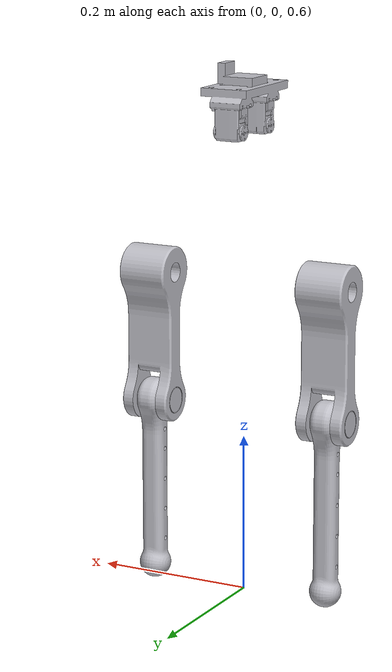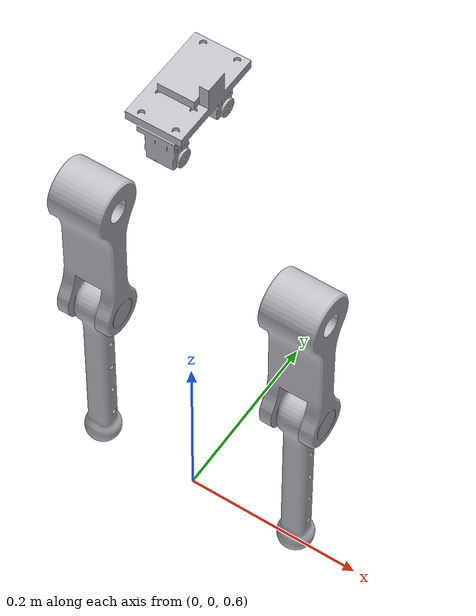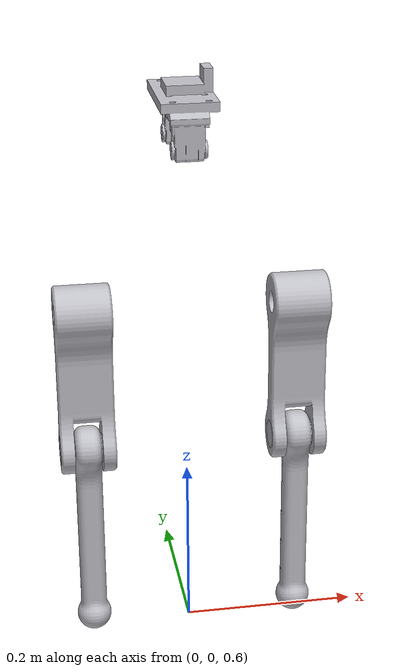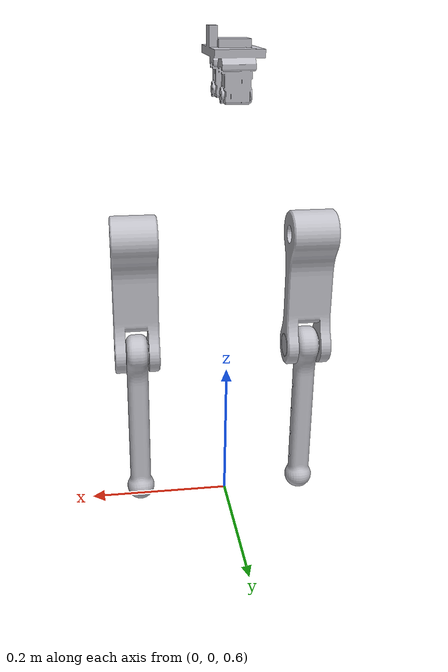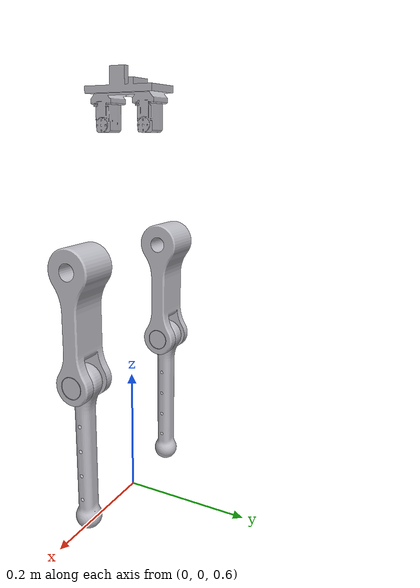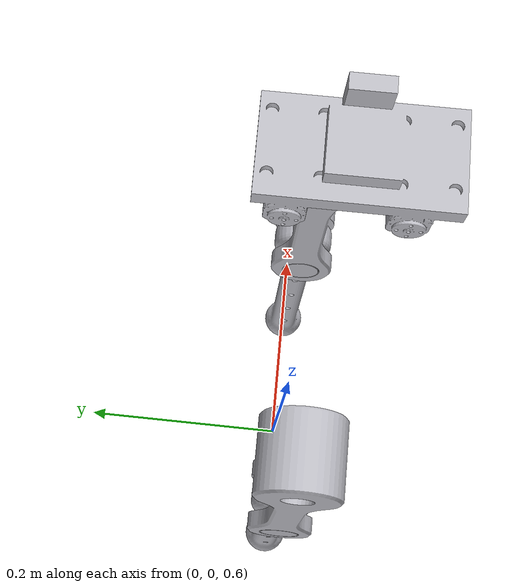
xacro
<?xml version="1.0" ?>
<robot name="biped" xmlns:xacro="http://www.ros.org/wiki/xacro">

    <xacro:include filename="$(find biped_description)/urdf/materials.xacro"/>
    <xacro:include filename="$(find biped_description)/urdf/biped.trans"/>
    <xacro:include filename="$(find biped_description)/urdf/biped.gazebo"/>
    <link name="world"/>
    <link name="base_link">
        <inertial>
            <origin rpy="0 0 0" xyz="0.005621327821758353 0.015721228739773975 -1.0465477887814689e-05"/>
            <mass value="1"/>
            <inertia ixx="0.031387" ixy="0.001206" ixz="-0.0" iyy="0.342069" iyz="-2e-06" izz="0.354706"/>
        </inertial>
        <visual>
            <origin rpy="0 0 0" xyz="0 0 0"/>
            <geometry>
                <mesh filename="package://biped_description/meshes/base_link.stl" scale="0.001 0.001 0.001"/>
            </geometry>
            <material name="silver"/>
        </visual>
        <collision>
            <origin rpy="0 0 0" xyz="0 0 0"/>
            <geometry>
                <mesh filename="package://biped_description/meshes/base_link.stl" scale="0.001 0.001 0.001"/>
            </geometry>
        </collision>
    </link>

    <link name="UP_P_1">
        <inertial>
            <origin rpy="0 0 0" xyz="-2.3592239273284576e-16 5.587886569027426e-14 -0.05397028252227504"/>
            <mass value="0.35203260631893807"/>
            <inertia ixx="0.00134" ixy="0.0" ixz="0.0" iyy="0.001395" iyz="-0.0" izz="0.000192"/>
        </inertial>
        <visual>
            <origin rpy="0 0 0" xyz="0.1141 -0.0 -0.0"/>
            <geometry>
                <mesh filename="package://biped_description/meshes/UP_P_1.stl" scale="0.001 0.001 0.001"/>
            </geometry>
            <material name="silver"/>
        </visual>
        <collision>
            <origin rpy="0 0 0" xyz="0.1141 -0.0 -0.0"/>
            <geometry>
                <mesh filename="package://biped_description/meshes/UP_P_1.stl" scale="0.001 0.001 0.001"/>
            </geometry>
        </collision>
    </link>

    <link name="UP_L_1">
        <inertial>
            <origin rpy="0 0 0" xyz="3.0531133177191805e-16 5.58744247981758e-14 -0.05397045116300229"/>
            <mass value="0.35203260631893807"/>
            <inertia ixx="0.00134" ixy="-0.0" ixz="-0.0" iyy="0.001395" iyz="-0.0" izz="0.000192"/>
        </inertial>
        <visual>
            <origin rpy="0 0 0" xyz="-0.1281 -0.0 2.6e-05"/>
            <geometry>
                <mesh filename="package://biped_description/meshes/UP_L_1.stl" scale="0.001 0.001 0.001"/>
            </geometry>
            <material name="silver"/>
        </visual>
        <collision>
            <origin rpy="0 0 0" xyz="-0.1281 -0.0 2.6e-05"/>
            <geometry>
                <mesh filename="package://biped_description/meshes/UP_L_1.stl" scale="0.001 0.001 0.001"/>
            </geometry>
        </collision>
    </link>

    <link name="Down_P_1">
        <inertial>
            <origin rpy="0 0 0" xyz="-0.030998642228740172 1.8867844062555403e-09 -0.08828312763207233"/>
            <mass value="0.15173834029450825"/>
            <inertia ixx="0.001065" ixy="-0.0" ixz="0.0" iyy="0.001071" iyz="0.0" izz="3.1e-05"/>
        </inertial>
        <visual>
            <origin rpy="0 0 0" xyz="0.0831 0.0 0.165"/>
            <geometry>
                <mesh filename="package://biped_description/meshes/Down_P_1.stl" scale="0.001 0.001 0.001"/>
            </geometry>
            <material name="silver"/>
        </visual>
        <collision>
            <origin rpy="0 0 0" xyz="0.0831 0.0 0.165"/>
            <geometry>
                <mesh filename="package://biped_description/meshes/Down_P_1.stl" scale="0.001 0.001 0.001"/>
            </geometry>
        </collision>
    </link>

    <link name="Down_L_1">
        <inertial>
            <origin rpy="0 0 0" xyz="-0.030998641899136897 -4.192344955897824e-09 -0.08829847602769825"/>
            <mass value="0.15170131913358528"/>
            <inertia ixx="0.001065" ixy="-0.0" ixz="0.0" iyy="0.001071" iyz="0.0" izz="3.1e-05"/>
        </inertial>
        <visual>
            <origin rpy="0 0 0" xyz="-0.1591 -0.0 0.165026"/>
            <geometry>
                <mesh filename="package://biped_description/meshes/Down_L_1.stl" scale="0.001 0.001 0.001"/>
            </geometry>
            <material name="silver"/>
        </visual>
        <collision>
            <origin rpy="0 0 0" xyz="-0.1591 -0.0 0.165026"/>
            <geometry>
                <mesh filename="package://biped_description/meshes/Down_L_1.stl" scale="0.001 0.001 0.001"/>
            </geometry>
        </collision>
    </link>
    <joint name="grouding" type="prismatic">
        <parent link="world"/>
        <child link="base_link"/>
        <origin rpy="0 0 0" xyz="0 0 1"/>
        <axis xyz="0 0 1"/>
        <limit effort="0" lower="-5.0" upper="5.0" velocity="3.0"/>
        <dynamics friction="0"/>
    </joint>
    <joint name="joint1" type="revolute">
        <origin rpy="0 0 0" xyz="-0.1141 0.0 0.0"/>
        <parent link="base_link"/>
        <child link="UP_P_1"/>
        <axis xyz="-1.0 0.0 -0.0"/>
        <limit effort="1000" velocity="5.0" lower="-2" upper="2"/>
    </joint>
    <joint name="joint2" type="revolute">
        <origin rpy="0 0 0" xyz="0.031 -0.0 -0.165"/>
        <parent link="UP_P_1"/>
        <child link="Down_P_1"/>
        <axis xyz="-1.0 -0.0 -0.0"/>
        <limit effort="1000" velocity="5.0" lower="-2" upper="2"/>
    </joint>
    <joint name="joint3" type="revolute">
        <origin rpy="0 0 0" xyz="0.1281 0.0 -2.6e-05"/>
        <parent link="base_link"/>
        <child link="UP_L_1"/>
        <axis xyz="-1.0 0.0 -0.0"/>
        <limit effort="1000" velocity="5.0" lower="-2" upper="2"/>
    </joint>

    <joint name="joint4" type="revolute">
        <origin rpy="0 0 0" xyz="0.031 0.0 -0.165"/>
        <parent link="UP_L_1"/>
        <child link="Down_L_1"/>
        <axis xyz="-1.0 0.0 -0.0"/>
        <limit effort="1000" velocity="5.0" lower="-2" upper="2"/>
    </joint>
    <gazebo>
        <plugin name="gazebo_ros_control" filename="libgazebo_ros_control.so">
            <robotNamespace>/biped</robotNamespace>
        </plugin>
    </gazebo>
    <gazebo>
        <plugin name="imu_plugin" filename="libgazebo_ros_imu.so">
            <alwaysOn>true</alwaysOn>
            <bodyName>base_link</bodyName>
            <topicName>imu</topicName>
            <serviceName>imu_service</serviceName>
            <gaussianNoise>0.0</gaussianNoise>
            <updateRate>20.0</updateRate>
        </plugin>
    </gazebo>
</robot>

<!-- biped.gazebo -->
<robot name="biped" xmlns:xacro="http://www.ros.org/wiki/xacro" >

<xacro:property name="body_color" value="Gazebo/Silver" />

<gazebo>
  <plugin filename="libgazebo_ros_control.so" name="control"/>
</gazebo>
<gazebo reference="base_link">
  <material>${body_color}</material>
  <mu1>0.2</mu1>
  <mu2>0.2</mu2>
  <selfCollide>false</selfCollide>
  <gravity>true</gravity>
</gazebo>

<gazebo reference="UP_P_1">
  <material>${body_color}</material>
  <mu1>0.2</mu1>
  <mu2>0.2</mu2>
  <selfCollide>false</selfCollide>
</gazebo>

<gazebo reference="UP_L_1">
  <material>${body_color}</material>
  <mu1>0.2</mu1>
  <mu2>0.2</mu2>
  <selfCollide>false</selfCollide>
</gazebo>

<gazebo reference="Down_P_1">
  <material>${body_color}</material>
  <mu1>0.2</mu1>
  <mu2>0.2</mu2>
  <selfCollide>false</selfCollide>
</gazebo>

<gazebo reference="Down_L_1">
  <material>${body_color}</material>
  <mu1>0.2</mu1>
  <mu2>0.2</mu2>
  <selfCollide>false</selfCollide>
</gazebo>

</robot>
